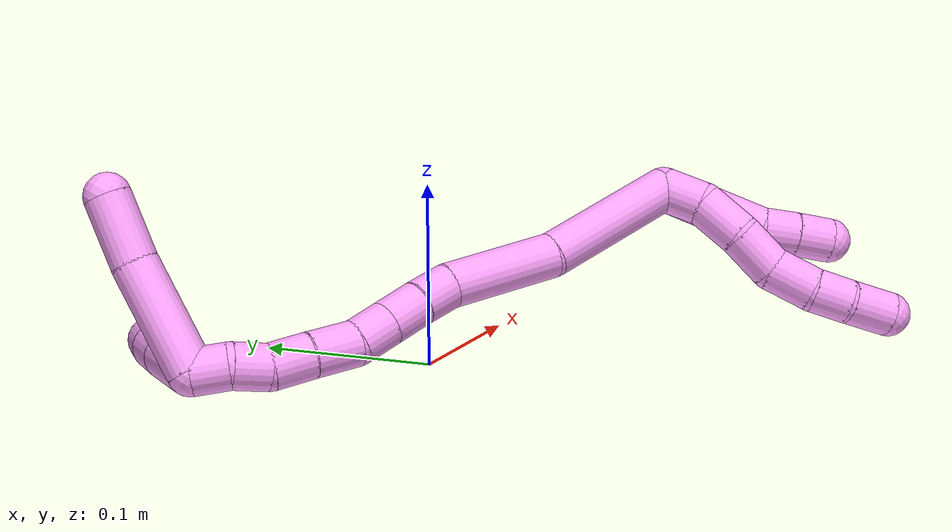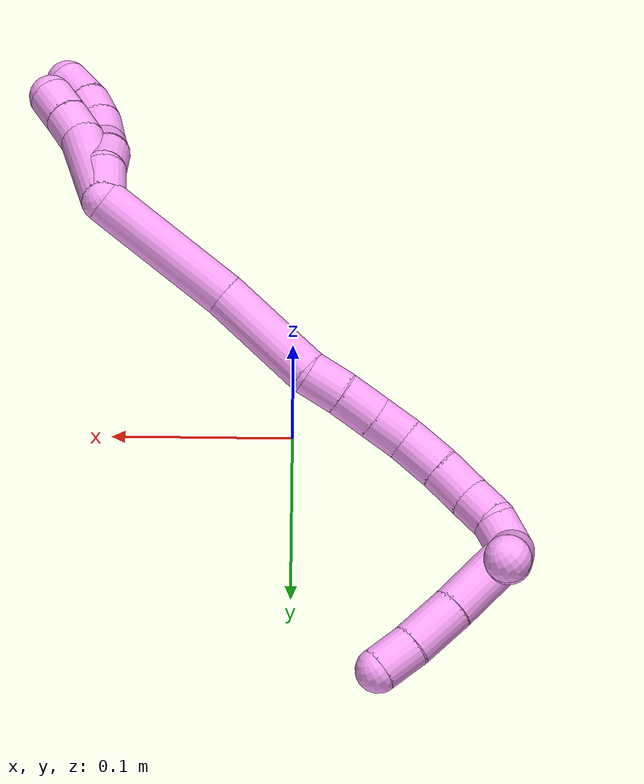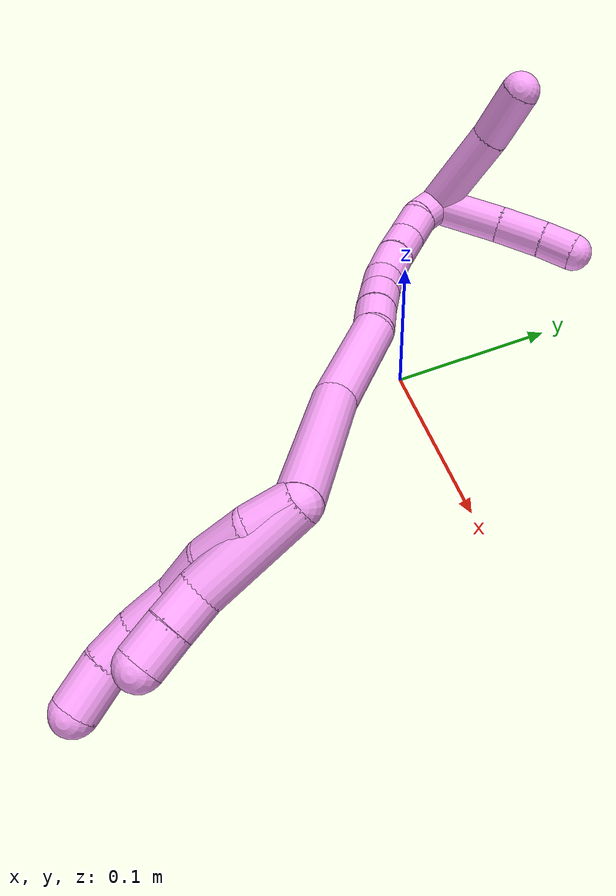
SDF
<sdf version="1.7">
 <world name="default">
  <model name="4">
   <static>0</static>
   <link name="4">
    <collision name="collision-cylinder-e_1_2_8">
     <pose>0.003411 -0.011812 0.001729 1.42542 0.278302 0.240916</pose>
     <geometry><cylinder><radius>0.0125</radius><length>0.024831</length></cylinder></geometry>
     <surface>
      <friction><ode><mu>1.16</mu><mu2>1.16</mu2><slip1>0</slip1><slip2>0</slip2></ode></friction>
      <contact><ode><kp>1e+06</kp><kd>1</kd><max_vel>0</max_vel><min_depth>0.001</min_depth></ode></contact>
     </surface>
    </collision>
    <visual name="visual-cylinder-e_1_2_8">
     <pose>0.003411 -0.011812 0.001729 1.42542 0.278302 0.240916</pose>
     <geometry><cylinder><radius>0.0125</radius><length>0.024831</length></cylinder></geometry>
     <material><ambient>1 0.65098 0.996078 1</ambient></material>
    </visual>
    <collision name="collision-cylinder-e_2_8_9">
     <pose>0.012004 -0.035921 0.001142 1.75699 0.392607 0.470755</pose>
     <geometry><cylinder><radius>0.0125</radius><length>0.027089</length></cylinder></geometry>
     <surface>
      <friction><ode><mu>1.16</mu><mu2>1.16</mu2><slip1>0</slip1><slip2>0</slip2></ode></friction>
      <contact><ode><kp>1e+06</kp><kd>1</kd><max_vel>0</max_vel><min_depth>0.001</min_depth></ode></contact>
     </surface>
    </collision>
    <visual name="visual-cylinder-e_2_8_9">
     <pose>0.012004 -0.035921 0.001142 1.75699 0.392607 0.470755</pose>
     <geometry><cylinder><radius>0.0125</radius><length>0.027089</length></cylinder></geometry>
     <material><ambient>1 0.65098 0.996078 1</ambient></material>
    </visual>
    <collision name="collision-cylinder-e_3_9_10">
     <pose>0.024506 -0.058461 -0.004094 1.84849 0.602194 0.780643</pose>
     <geometry><cylinder><radius>0.0125</radius><length>0.025847</length></cylinder></geometry>
     <surface>
      <friction><ode><mu>1.16</mu><mu2>1.16</mu2><slip1>0</slip1><slip2>0</slip2></ode></friction>
      <contact><ode><kp>1e+06</kp><kd>1</kd><max_vel>0</max_vel><min_depth>0.001</min_depth></ode></contact>
     </surface>
    </collision>
    <visual name="visual-cylinder-e_3_9_10">
     <pose>0.024506 -0.058461 -0.004094 1.84849 0.602194 0.780643</pose>
     <geometry><cylinder><radius>0.0125</radius><length>0.025847</length></cylinder></geometry>
     <material><ambient>1 0.65098 0.996078 1</ambient></material>
    </visual>
    <collision name="collision-cylinder-e_4_10_11">
     <pose>0.037669 -0.080348 -0.005972 1.48161 0.4634 0.425042</pose>
     <geometry><cylinder><radius>0.0125</radius><length>0.026139</length></cylinder></geometry>
     <surface>
      <friction><ode><mu>1.16</mu><mu2>1.16</mu2><slip1>0</slip1><slip2>0</slip2></ode></friction>
      <contact><ode><kp>1e+06</kp><kd>1</kd><max_vel>0</max_vel><min_depth>0.001</min_depth></ode></contact>
     </surface>
    </collision>
    <visual name="visual-cylinder-e_4_10_11">
     <pose>0.037669 -0.080348 -0.005972 1.48161 0.4634 0.425042</pose>
     <geometry><cylinder><radius>0.0125</radius><length>0.026139</length></cylinder></geometry>
     <material><ambient>1 0.65098 0.996078 1</ambient></material>
    </visual>
    <collision name="collision-cylinder-e_5_11_12">
     <pose>0.049142 -0.10055 -0.002176 1.25931 0.559564 0.412713</pose>
     <geometry><cylinder><radius>0.0125</radius><length>0.021216</length></cylinder></geometry>
     <surface>
      <friction><ode><mu>1.16</mu><mu2>1.16</mu2><slip1>0</slip1><slip2>0</slip2></ode></friction>
      <contact><ode><kp>1e+06</kp><kd>1</kd><max_vel>0</max_vel><min_depth>0.001</min_depth></ode></contact>
     </surface>
    </collision>
    <visual name="visual-cylinder-e_5_11_12">
     <pose>0.049142 -0.10055 -0.002176 1.25931 0.559564 0.412713</pose>
     <geometry><cylinder><radius>0.0125</radius><length>0.021216</length></cylinder></geometry>
     <material><ambient>1 0.65098 0.996078 1</ambient></material>
    </visual>
    <collision name="collision-cylinder-e_6_12_6">
     <pose>0.062999 -0.117573 0.004503 1.13683 0.72257 0.473661</pose>
     <geometry><cylinder><radius>0.0125</radius><length>0.024878</length></cylinder></geometry>
     <surface>
      <friction><ode><mu>1.16</mu><mu2>1.16</mu2><slip1>0</slip1><slip2>0</slip2></ode></friction>
      <contact><ode><kp>1e+06</kp><kd>1</kd><max_vel>0</max_vel><min_depth>0.001</min_depth></ode></contact>
     </surface>
    </collision>
    <visual name="visual-cylinder-e_6_12_6">
     <pose>0.062999 -0.117573 0.004503 1.13683 0.72257 0.473661</pose>
     <geometry><cylinder><radius>0.0125</radius><length>0.024878</length></cylinder></geometry>
     <material><ambient>1 0.65098 0.996078 1</ambient></material>
    </visual>
    <collision name="collision-cylinder-e_1_2_13">
     <pose>0.014153 -0.025813 0.005243 1.3704 0.493044 0.405672</pose>
     <geometry><cylinder><radius>0.0125</radius><length>0.059803</length></cylinder></geometry>
     <surface>
      <friction><ode><mu>1.16</mu><mu2>1.16</mu2><slip1>0</slip1><slip2>0</slip2></ode></friction>
      <contact><ode><kp>1e+06</kp><kd>1</kd><max_vel>0</max_vel><min_depth>0.001</min_depth></ode></contact>
     </surface>
    </collision>
    <visual name="visual-cylinder-e_1_2_13">
     <pose>0.014153 -0.025813 0.005243 1.3704 0.493044 0.405672</pose>
     <geometry><cylinder><radius>0.0125</radius><length>0.059803</length></cylinder></geometry>
     <material><ambient>1 0.65098 0.996078 1</ambient></material>
    </visual>
    <collision name="collision-cylinder-e_2_13_14">
     <pose>0.033751 -0.058787 0.014943 1.01411 0.57335 0.324634</pose>
     <geometry><cylinder><radius>0.0125</radius><length>0.02008</length></cylinder></geometry>
     <surface>
      <friction><ode><mu>1.16</mu><mu2>1.16</mu2><slip1>0</slip1><slip2>0</slip2></ode></friction>
      <contact><ode><kp>1e+06</kp><kd>1</kd><max_vel>0</max_vel><min_depth>0.001</min_depth></ode></contact>
     </surface>
    </collision>
    <visual name="visual-cylinder-e_2_13_14">
     <pose>0.033751 -0.058787 0.014943 1.01411 0.57335 0.324634</pose>
     <geometry><cylinder><radius>0.0125</radius><length>0.02008</length></cylinder></geometry>
     <material><ambient>1 0.65098 0.996078 1</ambient></material>
    </visual>
    <collision name="collision-cylinder-e_3_14_5">
     <pose>0.04498 -0.073049 0.02356 1.04088 0.612454 0.358536</pose>
     <geometry><cylinder><radius>0.0125</radius><length>0.020117</length></cylinder></geometry>
     <surface>
      <friction><ode><mu>1.16</mu><mu2>1.16</mu2><slip1>0</slip1><slip2>0</slip2></ode></friction>
      <contact><ode><kp>1e+06</kp><kd>1</kd><max_vel>0</max_vel><min_depth>0.001</min_depth></ode></contact>
     </surface>
    </collision>
    <visual name="visual-cylinder-e_3_14_5">
     <pose>0.04498 -0.073049 0.02356 1.04088 0.612454 0.358536</pose>
     <geometry><cylinder><radius>0.0125</radius><length>0.020117</length></cylinder></geometry>
     <material><ambient>1 0.65098 0.996078 1</ambient></material>
    </visual>
    <collision name="collision-cylinder-e_1_2_15">
     <pose>-0.01953 0.006967 -0.036628 -2.95363 -0.482511 2.40992</pose>
     <geometry><cylinder><radius>0.0125</radius><length>0.084179</length></cylinder></geometry>
     <surface>
      <friction><ode><mu>1.16</mu><mu2>1.16</mu2><slip1>0</slip1><slip2>0</slip2></ode></friction>
      <contact><ode><kp>1e+06</kp><kd>1</kd><max_vel>0</max_vel><min_depth>0.001</min_depth></ode></contact>
     </surface>
    </collision>
    <visual name="visual-cylinder-e_1_2_15">
     <pose>-0.01953 0.006967 -0.036628 -2.95363 -0.482511 2.40992</pose>
     <geometry><cylinder><radius>0.0125</radius><length>0.084179</length></cylinder></geometry>
     <material><ambient>1 0.65098 0.996078 1</ambient></material>
    </visual>
    <collision name="collision-cylinder-e_2_15_16">
     <pose>-0.055567 0.025587 -0.097478 -2.69316 -0.550746 1.78347</pose>
     <geometry><cylinder><radius>0.0125</radius><length>0.063088</length></cylinder></geometry>
     <surface>
      <friction><ode><mu>1.16</mu><mu2>1.16</mu2><slip1>0</slip1><slip2>0</slip2></ode></friction>
      <contact><ode><kp>1e+06</kp><kd>1</kd><max_vel>0</max_vel><min_depth>0.001</min_depth></ode></contact>
     </surface>
    </collision>
    <visual name="visual-cylinder-e_2_15_16">
     <pose>-0.055567 0.025587 -0.097478 -2.69316 -0.550746 1.78347</pose>
     <geometry><cylinder><radius>0.0125</radius><length>0.063088</length></cylinder></geometry>
     <material><ambient>1 0.65098 0.996078 1</ambient></material>
    </visual>
    <collision name="collision-cylinder-e_3_16_17">
     <pose>-0.077928 0.038222 -0.130871 -3.03506 -0.565411 2.77856</pose>
     <geometry><cylinder><radius>0.0125</radius><length>0.021847</length></cylinder></geometry>
     <surface>
      <friction><ode><mu>1.16</mu><mu2>1.16</mu2><slip1>0</slip1><slip2>0</slip2></ode></friction>
      <contact><ode><kp>1e+06</kp><kd>1</kd><max_vel>0</max_vel><min_depth>0.001</min_depth></ode></contact>
     </surface>
    </collision>
    <visual name="visual-cylinder-e_3_16_17">
     <pose>-0.077928 0.038222 -0.130871 -3.03506 -0.565411 2.77856</pose>
     <geometry><cylinder><radius>0.0125</radius><length>0.021847</length></cylinder></geometry>
     <material><ambient>1 0.65098 0.996078 1</ambient></material>
    </visual>
    <collision name="collision-cylinder-e_4_17_18">
     <pose>-0.088987 0.040434 -0.149709 -3.01486 -0.490751 2.6453</pose>
     <geometry><cylinder><radius>0.0125</radius><length>0.022099</length></cylinder></geometry>
     <surface>
      <friction><ode><mu>1.16</mu><mu2>1.16</mu2><slip1>0</slip1><slip2>0</slip2></ode></friction>
      <contact><ode><kp>1e+06</kp><kd>1</kd><max_vel>0</max_vel><min_depth>0.001</min_depth></ode></contact>
     </surface>
    </collision>
    <visual name="visual-cylinder-e_4_17_18">
     <pose>-0.088987 0.040434 -0.149709 -3.01486 -0.490751 2.6453</pose>
     <geometry><cylinder><radius>0.0125</radius><length>0.022099</length></cylinder></geometry>
     <material><ambient>1 0.65098 0.996078 1</ambient></material>
    </visual>
    <collision name="collision-cylinder-e_5_18_19">
     <pose>-0.099072 0.042815 -0.168433 -3.01541 -0.490652 2.64727</pose>
     <geometry><cylinder><radius>0.0125</radius><length>0.0207</length></cylinder></geometry>
     <surface>
      <friction><ode><mu>1.16</mu><mu2>1.16</mu2><slip1>0</slip1><slip2>0</slip2></ode></friction>
      <contact><ode><kp>1e+06</kp><kd>1</kd><max_vel>0</max_vel><min_depth>0.001</min_depth></ode></contact>
     </surface>
    </collision>
    <visual name="visual-cylinder-e_5_18_19">
     <pose>-0.099072 0.042815 -0.168433 -3.01541 -0.490652 2.64727</pose>
     <geometry><cylinder><radius>0.0125</radius><length>0.0207</length></cylinder></geometry>
     <material><ambient>1 0.65098 0.996078 1</ambient></material>
    </visual>
    <collision name="collision-cylinder-e_6_19_20">
     <pose>-0.1111 0.048495 -0.186884 -2.69221 -0.601032 1.8707</pose>
     <geometry><cylinder><radius>0.0125</radius><length>0.025293</length></cylinder></geometry>
     <surface>
      <friction><ode><mu>1.16</mu><mu2>1.16</mu2><slip1>0</slip1><slip2>0</slip2></ode></friction>
      <contact><ode><kp>1e+06</kp><kd>1</kd><max_vel>0</max_vel><min_depth>0.001</min_depth></ode></contact>
     </surface>
    </collision>
    <visual name="visual-cylinder-e_6_19_20">
     <pose>-0.1111 0.048495 -0.186884 -2.69221 -0.601032 1.8707</pose>
     <geometry><cylinder><radius>0.0125</radius><length>0.025293</length></cylinder></geometry>
     <material><ambient>1 0.65098 0.996078 1</ambient></material>
    </visual>
    <collision name="collision-cylinder-e_7_20_21">
     <pose>-0.124016 0.057496 -0.204962 -2.66613 -0.533229 1.69019</pose>
     <geometry><cylinder><radius>0.0125</radius><length>0.022681</length></cylinder></geometry>
     <surface>
      <friction><ode><mu>1.16</mu><mu2>1.16</mu2><slip1>0</slip1><slip2>0</slip2></ode></friction>
      <contact><ode><kp>1e+06</kp><kd>1</kd><max_vel>0</max_vel><min_depth>0.001</min_depth></ode></contact>
     </surface>
    </collision>
    <visual name="visual-cylinder-e_7_20_21">
     <pose>-0.124016 0.057496 -0.204962 -2.66613 -0.533229 1.69019</pose>
     <geometry><cylinder><radius>0.0125</radius><length>0.022681</length></cylinder></geometry>
     <material><ambient>1 0.65098 0.996078 1</ambient></material>
    </visual>
    <collision name="collision-cylinder-e_8_21_22">
     <pose>-0.136144 0.067606 -0.218912 -2.32209 -0.689505 1.3817</pose>
     <geometry><cylinder><radius>0.0125</radius><length>0.020004</length></cylinder></geometry>
     <surface>
      <friction><ode><mu>1.16</mu><mu2>1.16</mu2><slip1>0</slip1><slip2>0</slip2></ode></friction>
      <contact><ode><kp>1e+06</kp><kd>1</kd><max_vel>0</max_vel><min_depth>0.001</min_depth></ode></contact>
     </surface>
    </collision>
    <visual name="visual-cylinder-e_8_21_22">
     <pose>-0.136144 0.067606 -0.218912 -2.32209 -0.689505 1.3817</pose>
     <geometry><cylinder><radius>0.0125</radius><length>0.020004</length></cylinder></geometry>
     <material><ambient>1 0.65098 0.996078 1</ambient></material>
    </visual>
    <collision name="collision-cylinder-e_9_22_1">
     <pose>-0.146062 0.07974 -0.230983 -2.37945 -0.36141 0.855657</pose>
     <geometry><cylinder><radius>0.0125</radius><length>0.020108</length></cylinder></geometry>
     <surface>
      <friction><ode><mu>1.16</mu><mu2>1.16</mu2><slip1>0</slip1><slip2>0</slip2></ode></friction>
      <contact><ode><kp>1e+06</kp><kd>1</kd><max_vel>0</max_vel><min_depth>0.001</min_depth></ode></contact>
     </surface>
    </collision>
    <visual name="visual-cylinder-e_9_22_1">
     <pose>-0.146062 0.07974 -0.230983 -2.37945 -0.36141 0.855657</pose>
     <geometry><cylinder><radius>0.0125</radius><length>0.020108</length></cylinder></geometry>
     <material><ambient>1 0.65098 0.996078 1</ambient></material>
    </visual>
    <collision name="collision-cylinder-e_1_1_23">
     <pose>-0.137281 0.105863 -0.236371 -1.49886 0.55992 -0.522832</pose>
     <geometry><cylinder><radius>0.0125</radius><length>0.046454</length></cylinder></geometry>
     <surface>
      <friction><ode><mu>1.16</mu><mu2>1.16</mu2><slip1>0</slip1><slip2>0</slip2></ode></friction>
      <contact><ode><kp>1e+06</kp><kd>1</kd><max_vel>0</max_vel><min_depth>0.001</min_depth></ode></contact>
     </surface>
    </collision>
    <visual name="visual-cylinder-e_1_1_23">
     <pose>-0.137281 0.105863 -0.236371 -1.49886 0.55992 -0.522832</pose>
     <geometry><cylinder><radius>0.0125</radius><length>0.046454</length></cylinder></geometry>
     <material><ambient>1 0.65098 0.996078 1</ambient></material>
    </visual>
    <collision name="collision-cylinder-e_2_23_24">
     <pose>-0.116214 0.138247 -0.23361 -1.46564 0.597639 -0.540896</pose>
     <geometry><cylinder><radius>0.0125</radius><length>0.031031</length></cylinder></geometry>
     <surface>
      <friction><ode><mu>1.16</mu><mu2>1.16</mu2><slip1>0</slip1><slip2>0</slip2></ode></friction>
      <contact><ode><kp>1e+06</kp><kd>1</kd><max_vel>0</max_vel><min_depth>0.001</min_depth></ode></contact>
     </surface>
    </collision>
    <visual name="visual-cylinder-e_2_23_24">
     <pose>-0.116214 0.138247 -0.23361 -1.46564 0.597639 -0.540896</pose>
     <geometry><cylinder><radius>0.0125</radius><length>0.031031</length></cylinder></geometry>
     <material><ambient>1 0.65098 0.996078 1</ambient></material>
    </visual>
    <collision name="collision-cylinder-e_3_24_4">
     <pose>-0.100607 0.159758 -0.230595 -1.38246 0.657121 -0.549868</pose>
     <geometry><cylinder><radius>0.0125</radius><length>0.022515</length></cylinder></geometry>
     <surface>
      <friction><ode><mu>1.16</mu><mu2>1.16</mu2><slip1>0</slip1><slip2>0</slip2></ode></friction>
      <contact><ode><kp>1e+06</kp><kd>1</kd><max_vel>0</max_vel><min_depth>0.001</min_depth></ode></contact>
     </surface>
    </collision>
    <visual name="visual-cylinder-e_3_24_4">
     <pose>-0.100607 0.159758 -0.230595 -1.38246 0.657121 -0.549868</pose>
     <geometry><cylinder><radius>0.0125</radius><length>0.022515</length></cylinder></geometry>
     <material><ambient>1 0.65098 0.996078 1</ambient></material>
    </visual>
    <collision name="collision-cylinder-e_1_1_25">
     <pose>-0.164629 0.109222 -0.222573 -0.986208 -0.498665 0.271979</pose>
     <geometry><cylinder><radius>0.0125</radius><length>0.062778</length></cylinder></geometry>
     <surface>
      <friction><ode><mu>1.16</mu><mu2>1.16</mu2><slip1>0</slip1><slip2>0</slip2></ode></friction>
      <contact><ode><kp>1e+06</kp><kd>1</kd><max_vel>0</max_vel><min_depth>0.001</min_depth></ode></contact>
     </surface>
    </collision>
    <visual name="visual-cylinder-e_1_1_25">
     <pose>-0.164629 0.109222 -0.222573 -0.986208 -0.498665 0.271979</pose>
     <geometry><cylinder><radius>0.0125</radius><length>0.062778</length></cylinder></geometry>
     <material><ambient>1 0.65098 0.996078 1</ambient></material>
    </visual>
    <collision name="collision-cylinder-e_2_25_3">
     <pose>-0.189159 0.144379 -0.196981 -0.864546 -0.536818 0.252449</pose>
     <geometry><cylinder><radius>0.0125</radius><length>0.037222</length></cylinder></geometry>
     <surface>
      <friction><ode><mu>1.16</mu><mu2>1.16</mu2><slip1>0</slip1><slip2>0</slip2></ode></friction>
      <contact><ode><kp>1e+06</kp><kd>1</kd><max_vel>0</max_vel><min_depth>0.001</min_depth></ode></contact>
     </surface>
    </collision>
    <visual name="visual-cylinder-e_2_25_3">
     <pose>-0.189159 0.144379 -0.196981 -0.864546 -0.536818 0.252449</pose>
     <geometry><cylinder><radius>0.0125</radius><length>0.037222</length></cylinder></geometry>
     <material><ambient>1 0.65098 0.996078 1</ambient></material>
    </visual>
    <collision name="collision-sphere-3">
     <pose>-0.198676 0.156546 -0.186601 0 -0 0</pose>
     <geometry><sphere><radius>0.0125</radius></sphere></geometry>
     <surface>
      <friction><ode><mu>1.16</mu><mu2>1.16</mu2><slip1>0</slip1><slip2>0</slip2></ode></friction>
      <contact><ode><kp>1e+06</kp><kd>1</kd><max_vel>0</max_vel><min_depth>0.001</min_depth></ode></contact>
     </surface>
    </collision>
    <visual name="visual-sphere-3">
     <pose>-0.198676 0.156546 -0.186601 0 -0 0</pose>
     <geometry><sphere><radius>0.0125</radius></sphere></geometry>
     <material><ambient>1 0.65098 0.996078 1</ambient></material>
    </visual>
    <collision name="collision-sphere-25">
     <pose>-0.179641 0.132211 -0.20736 0 -0 0</pose>
     <geometry><sphere><radius>0.0125</radius></sphere></geometry>
     <surface>
      <friction><ode><mu>1.16</mu><mu2>1.16</mu2><slip1>0</slip1><slip2>0</slip2></ode></friction>
      <contact><ode><kp>1e+06</kp><kd>1</kd><max_vel>0</max_vel><min_depth>0.001</min_depth></ode></contact>
     </surface>
    </collision>
    <visual name="visual-sphere-25">
     <pose>-0.179641 0.132211 -0.20736 0 -0 0</pose>
     <geometry><sphere><radius>0.0125</radius></sphere></geometry>
     <material><ambient>1 0.65098 0.996078 1</ambient></material>
    </visual>
    <collision name="collision-sphere-4">
     <pose>-0.09373 0.168514 -0.228926 0 -0 0</pose>
     <geometry><sphere><radius>0.0125</radius></sphere></geometry>
     <surface>
      <friction><ode><mu>1.16</mu><mu2>1.16</mu2><slip1>0</slip1><slip2>0</slip2></ode></friction>
      <contact><ode><kp>1e+06</kp><kd>1</kd><max_vel>0</max_vel><min_depth>0.001</min_depth></ode></contact>
     </surface>
    </collision>
    <visual name="visual-sphere-4">
     <pose>-0.09373 0.168514 -0.228926 0 -0 0</pose>
     <geometry><sphere><radius>0.0125</radius></sphere></geometry>
     <material><ambient>1 0.65098 0.996078 1</ambient></material>
    </visual>
    <collision name="collision-sphere-24">
     <pose>-0.107484 0.151002 -0.232264 0 -0 0</pose>
     <geometry><sphere><radius>0.0125</radius></sphere></geometry>
     <surface>
      <friction><ode><mu>1.16</mu><mu2>1.16</mu2><slip1>0</slip1><slip2>0</slip2></ode></friction>
      <contact><ode><kp>1e+06</kp><kd>1</kd><max_vel>0</max_vel><min_depth>0.001</min_depth></ode></contact>
     </surface>
    </collision>
    <visual name="visual-sphere-24">
     <pose>-0.107484 0.151002 -0.232264 0 -0 0</pose>
     <geometry><sphere><radius>0.0125</radius></sphere></geometry>
     <material><ambient>1 0.65098 0.996078 1</ambient></material>
    </visual>
    <collision name="collision-sphere-23">
     <pose>-0.124944 0.125492 -0.234957 0 -0 0</pose>
     <geometry><sphere><radius>0.0125</radius></sphere></geometry>
     <surface>
      <friction><ode><mu>1.16</mu><mu2>1.16</mu2><slip1>0</slip1><slip2>0</slip2></ode></friction>
      <contact><ode><kp>1e+06</kp><kd>1</kd><max_vel>0</max_vel><min_depth>0.001</min_depth></ode></contact>
     </surface>
    </collision>
    <visual name="visual-sphere-23">
     <pose>-0.124944 0.125492 -0.234957 0 -0 0</pose>
     <geometry><sphere><radius>0.0125</radius></sphere></geometry>
     <material><ambient>1 0.65098 0.996078 1</ambient></material>
    </visual>
    <collision name="collision-sphere-1">
     <pose>-0.149617 0.086233 -0.237786 0 -0 0</pose>
     <geometry><sphere><radius>0.0125</radius></sphere></geometry>
     <surface>
      <friction><ode><mu>1.16</mu><mu2>1.16</mu2><slip1>0</slip1><slip2>0</slip2></ode></friction>
      <contact><ode><kp>1e+06</kp><kd>1</kd><max_vel>0</max_vel><min_depth>0.001</min_depth></ode></contact>
     </surface>
    </collision>
    <visual name="visual-sphere-1">
     <pose>-0.149617 0.086233 -0.237786 0 -0 0</pose>
     <geometry><sphere><radius>0.0125</radius></sphere></geometry>
     <material><ambient>1 0.65098 0.996078 1</ambient></material>
    </visual>
    <collision name="collision-sphere-22">
     <pose>-0.142507 0.073246 -0.22418 0 -0 0</pose>
     <geometry><sphere><radius>0.0125</radius></sphere></geometry>
     <surface>
      <friction><ode><mu>1.16</mu><mu2>1.16</mu2><slip1>0</slip1><slip2>0</slip2></ode></friction>
      <contact><ode><kp>1e+06</kp><kd>1</kd><max_vel>0</max_vel><min_depth>0.001</min_depth></ode></contact>
     </surface>
    </collision>
    <visual name="visual-sphere-22">
     <pose>-0.142507 0.073246 -0.22418 0 -0 0</pose>
     <geometry><sphere><radius>0.0125</radius></sphere></geometry>
     <material><ambient>1 0.65098 0.996078 1</ambient></material>
    </visual>
    <collision name="collision-sphere-21">
     <pose>-0.129781 0.061966 -0.213644 0 -0 0</pose>
     <geometry><sphere><radius>0.0125</radius></sphere></geometry>
     <surface>
      <friction><ode><mu>1.16</mu><mu2>1.16</mu2><slip1>0</slip1><slip2>0</slip2></ode></friction>
      <contact><ode><kp>1e+06</kp><kd>1</kd><max_vel>0</max_vel><min_depth>0.001</min_depth></ode></contact>
     </surface>
    </collision>
    <visual name="visual-sphere-21">
     <pose>-0.129781 0.061966 -0.213644 0 -0 0</pose>
     <geometry><sphere><radius>0.0125</radius></sphere></geometry>
     <material><ambient>1 0.65098 0.996078 1</ambient></material>
    </visual>
    <collision name="collision-sphere-12">
     <pose>0.054773 -0.109108 0.00058 0 -0 0</pose>
     <geometry><sphere><radius>0.0125</radius></sphere></geometry>
     <surface>
      <friction><ode><mu>1.16</mu><mu2>1.16</mu2><slip1>0</slip1><slip2>0</slip2></ode></friction>
      <contact><ode><kp>1e+06</kp><kd>1</kd><max_vel>0</max_vel><min_depth>0.001</min_depth></ode></contact>
     </surface>
    </collision>
    <visual name="visual-sphere-12">
     <pose>0.054773 -0.109108 0.00058 0 -0 0</pose>
     <geometry><sphere><radius>0.0125</radius></sphere></geometry>
     <material><ambient>1 0.65098 0.996078 1</ambient></material>
    </visual>
    <collision name="collision-sphere-11">
     <pose>0.043511 -0.091992 -0.004931 0 -0 0</pose>
     <geometry><sphere><radius>0.0125</radius></sphere></geometry>
     <surface>
      <friction><ode><mu>1.16</mu><mu2>1.16</mu2><slip1>0</slip1><slip2>0</slip2></ode></friction>
      <contact><ode><kp>1e+06</kp><kd>1</kd><max_vel>0</max_vel><min_depth>0.001</min_depth></ode></contact>
     </surface>
    </collision>
    <visual name="visual-sphere-11">
     <pose>0.043511 -0.091992 -0.004931 0 -0 0</pose>
     <geometry><sphere><radius>0.0125</radius></sphere></geometry>
     <material><ambient>1 0.65098 0.996078 1</ambient></material>
    </visual>
    <collision name="collision-sphere-10">
     <pose>0.031827 -0.068703 -0.007014 0 -0 0</pose>
     <geometry><sphere><radius>0.0125</radius></sphere></geometry>
     <surface>
      <friction><ode><mu>1.16</mu><mu2>1.16</mu2><slip1>0</slip1><slip2>0</slip2></ode></friction>
      <contact><ode><kp>1e+06</kp><kd>1</kd><max_vel>0</max_vel><min_depth>0.001</min_depth></ode></contact>
     </surface>
    </collision>
    <visual name="visual-sphere-10">
     <pose>0.031827 -0.068703 -0.007014 0 -0 0</pose>
     <geometry><sphere><radius>0.0125</radius></sphere></geometry>
     <material><ambient>1 0.65098 0.996078 1</ambient></material>
    </visual>
    <collision name="collision-sphere-9">
     <pose>0.017186 -0.048219 -0.001174 0 -0 0</pose>
     <geometry><sphere><radius>0.0125</radius></sphere></geometry>
     <surface>
      <friction><ode><mu>1.16</mu><mu2>1.16</mu2><slip1>0</slip1><slip2>0</slip2></ode></friction>
      <contact><ode><kp>1e+06</kp><kd>1</kd><max_vel>0</max_vel><min_depth>0.001</min_depth></ode></contact>
     </surface>
    </collision>
    <visual name="visual-sphere-9">
     <pose>0.017186 -0.048219 -0.001174 0 -0 0</pose>
     <geometry><sphere><radius>0.0125</radius></sphere></geometry>
     <material><ambient>1 0.65098 0.996078 1</ambient></material>
    </visual>
    <collision name="collision-sphere-2">
     <geometry><sphere><radius>0.0125</radius></sphere></geometry>
     <surface>
      <friction><ode><mu>1.16</mu><mu2>1.16</mu2><slip1>0</slip1><slip2>0</slip2></ode></friction>
      <contact><ode><kp>1e+06</kp><kd>1</kd><max_vel>0</max_vel><min_depth>0.001</min_depth></ode></contact>
     </surface>
    </collision>
    <visual name="visual-sphere-2">
     <geometry><sphere><radius>0.0125</radius></sphere></geometry>
     <material><ambient>1 0.65098 0.996078 1</ambient></material>
    </visual>
    <collision name="collision-sphere-19">
     <pose>-0.103949 0.043964 -0.177489 0 -0 0</pose>
     <geometry><sphere><radius>0.0125</radius></sphere></geometry>
     <surface>
      <friction><ode><mu>1.16</mu><mu2>1.16</mu2><slip1>0</slip1><slip2>0</slip2></ode></friction>
      <contact><ode><kp>1e+06</kp><kd>1</kd><max_vel>0</max_vel><min_depth>0.001</min_depth></ode></contact>
     </surface>
    </collision>
    <visual name="visual-sphere-19">
     <pose>-0.103949 0.043964 -0.177489 0 -0 0</pose>
     <geometry><sphere><radius>0.0125</radius></sphere></geometry>
     <material><ambient>1 0.65098 0.996078 1</ambient></material>
    </visual>
    <collision name="collision-sphere-8">
     <pose>0.006822 -0.023624 0.003459 0 -0 0</pose>
     <geometry><sphere><radius>0.0125</radius></sphere></geometry>
     <surface>
      <friction><ode><mu>1.16</mu><mu2>1.16</mu2><slip1>0</slip1><slip2>0</slip2></ode></friction>
      <contact><ode><kp>1e+06</kp><kd>1</kd><max_vel>0</max_vel><min_depth>0.001</min_depth></ode></contact>
     </surface>
    </collision>
    <visual name="visual-sphere-8">
     <pose>0.006822 -0.023624 0.003459 0 -0 0</pose>
     <geometry><sphere><radius>0.0125</radius></sphere></geometry>
     <material><ambient>1 0.65098 0.996078 1</ambient></material>
    </visual>
    <collision name="collision-sphere-6">
     <pose>0.071225 -0.126039 0.008426 0 -0 0</pose>
     <geometry><sphere><radius>0.0125</radius></sphere></geometry>
     <surface>
      <friction><ode><mu>1.16</mu><mu2>1.16</mu2><slip1>0</slip1><slip2>0</slip2></ode></friction>
      <contact><ode><kp>1e+06</kp><kd>1</kd><max_vel>0</max_vel><min_depth>0.001</min_depth></ode></contact>
     </surface>
    </collision>
    <visual name="visual-sphere-6">
     <pose>0.071225 -0.126039 0.008426 0 -0 0</pose>
     <geometry><sphere><radius>0.0125</radius></sphere></geometry>
     <material><ambient>1 0.65098 0.996078 1</ambient></material>
    </visual>
    <collision name="collision-sphere-13">
     <pose>0.028305 -0.051626 0.010487 0 -0 0</pose>
     <geometry><sphere><radius>0.0125</radius></sphere></geometry>
     <surface>
      <friction><ode><mu>1.16</mu><mu2>1.16</mu2><slip1>0</slip1><slip2>0</slip2></ode></friction>
      <contact><ode><kp>1e+06</kp><kd>1</kd><max_vel>0</max_vel><min_depth>0.001</min_depth></ode></contact>
     </surface>
    </collision>
    <visual name="visual-sphere-13">
     <pose>0.028305 -0.051626 0.010487 0 -0 0</pose>
     <geometry><sphere><radius>0.0125</radius></sphere></geometry>
     <material><ambient>1 0.65098 0.996078 1</ambient></material>
    </visual>
    <collision name="collision-sphere-14">
     <pose>0.039198 -0.065948 0.0194 0 -0 0</pose>
     <geometry><sphere><radius>0.0125</radius></sphere></geometry>
     <surface>
      <friction><ode><mu>1.16</mu><mu2>1.16</mu2><slip1>0</slip1><slip2>0</slip2></ode></friction>
      <contact><ode><kp>1e+06</kp><kd>1</kd><max_vel>0</max_vel><min_depth>0.001</min_depth></ode></contact>
     </surface>
    </collision>
    <visual name="visual-sphere-14">
     <pose>0.039198 -0.065948 0.0194 0 -0 0</pose>
     <geometry><sphere><radius>0.0125</radius></sphere></geometry>
     <material><ambient>1 0.65098 0.996078 1</ambient></material>
    </visual>
    <collision name="collision-sphere-5">
     <pose>0.050763 -0.080151 0.02772 0 -0 0</pose>
     <geometry><sphere><radius>0.0125</radius></sphere></geometry>
     <surface>
      <friction><ode><mu>1.16</mu><mu2>1.16</mu2><slip1>0</slip1><slip2>0</slip2></ode></friction>
      <contact><ode><kp>1e+06</kp><kd>1</kd><max_vel>0</max_vel><min_depth>0.001</min_depth></ode></contact>
     </surface>
    </collision>
    <visual name="visual-sphere-5">
     <pose>0.050763 -0.080151 0.02772 0 -0 0</pose>
     <geometry><sphere><radius>0.0125</radius></sphere></geometry>
     <material><ambient>1 0.65098 0.996078 1</ambient></material>
    </visual>
    <collision name="collision-sphere-15">
     <pose>-0.03906 0.013933 -0.073256 0 -0 0</pose>
     <geometry><sphere><radius>0.0125</radius></sphere></geometry>
     <surface>
      <friction><ode><mu>1.16</mu><mu2>1.16</mu2><slip1>0</slip1><slip2>0</slip2></ode></friction>
      <contact><ode><kp>1e+06</kp><kd>1</kd><max_vel>0</max_vel><min_depth>0.001</min_depth></ode></contact>
     </surface>
    </collision>
    <visual name="visual-sphere-15">
     <pose>-0.03906 0.013933 -0.073256 0 -0 0</pose>
     <geometry><sphere><radius>0.0125</radius></sphere></geometry>
     <material><ambient>1 0.65098 0.996078 1</ambient></material>
    </visual>
    <collision name="collision-sphere-16">
     <pose>-0.072075 0.037241 -0.1217 0 -0 0</pose>
     <geometry><sphere><radius>0.0125</radius></sphere></geometry>
     <surface>
      <friction><ode><mu>1.16</mu><mu2>1.16</mu2><slip1>0</slip1><slip2>0</slip2></ode></friction>
      <contact><ode><kp>1e+06</kp><kd>1</kd><max_vel>0</max_vel><min_depth>0.001</min_depth></ode></contact>
     </surface>
    </collision>
    <visual name="visual-sphere-16">
     <pose>-0.072075 0.037241 -0.1217 0 -0 0</pose>
     <geometry><sphere><radius>0.0125</radius></sphere></geometry>
     <material><ambient>1 0.65098 0.996078 1</ambient></material>
    </visual>
    <collision name="collision-sphere-17">
     <pose>-0.08378 0.039203 -0.140042 0 -0 0</pose>
     <geometry><sphere><radius>0.0125</radius></sphere></geometry>
     <surface>
      <friction><ode><mu>1.16</mu><mu2>1.16</mu2><slip1>0</slip1><slip2>0</slip2></ode></friction>
      <contact><ode><kp>1e+06</kp><kd>1</kd><max_vel>0</max_vel><min_depth>0.001</min_depth></ode></contact>
     </surface>
    </collision>
    <visual name="visual-sphere-17">
     <pose>-0.08378 0.039203 -0.140042 0 -0 0</pose>
     <geometry><sphere><radius>0.0125</radius></sphere></geometry>
     <material><ambient>1 0.65098 0.996078 1</ambient></material>
    </visual>
    <collision name="collision-sphere-18">
     <pose>-0.094195 0.041666 -0.159377 0 -0 0</pose>
     <geometry><sphere><radius>0.0125</radius></sphere></geometry>
     <surface>
      <friction><ode><mu>1.16</mu><mu2>1.16</mu2><slip1>0</slip1><slip2>0</slip2></ode></friction>
      <contact><ode><kp>1e+06</kp><kd>1</kd><max_vel>0</max_vel><min_depth>0.001</min_depth></ode></contact>
     </surface>
    </collision>
    <visual name="visual-sphere-18">
     <pose>-0.094195 0.041666 -0.159377 0 -0 0</pose>
     <geometry><sphere><radius>0.0125</radius></sphere></geometry>
     <material><ambient>1 0.65098 0.996078 1</ambient></material>
    </visual>
    <collision name="collision-sphere-20">
     <pose>-0.118252 0.053026 -0.196279 0 -0 0</pose>
     <geometry><sphere><radius>0.0125</radius></sphere></geometry>
     <surface>
      <friction><ode><mu>1.16</mu><mu2>1.16</mu2><slip1>0</slip1><slip2>0</slip2></ode></friction>
      <contact><ode><kp>1e+06</kp><kd>1</kd><max_vel>0</max_vel><min_depth>0.001</min_depth></ode></contact>
     </surface>
    </collision>
    <visual name="visual-sphere-20">
     <pose>-0.118252 0.053026 -0.196279 0 -0 0</pose>
     <geometry><sphere><radius>0.0125</radius></sphere></geometry>
     <material><ambient>1 0.65098 0.996078 1</ambient></material>
    </visual>
    <inertial>
     <pose>-0.059614 0.028277 -0.108063 0 -0 0</pose>
     <mass>0.75</mass>
     <inertia><ixx>9.2e-05</ixx><ixy>0</ixy><ixz>0</ixz><iyy>0.00017</iyy><iyz>0</iyz><izz>-4e-06</izz></inertia>
    </inertial>
   </link>
   <pose>0.10478 -0.099123 0.08748 0.321225 0.637602 -0.088263</pose>
  </model>
 </world>
</sdf>
